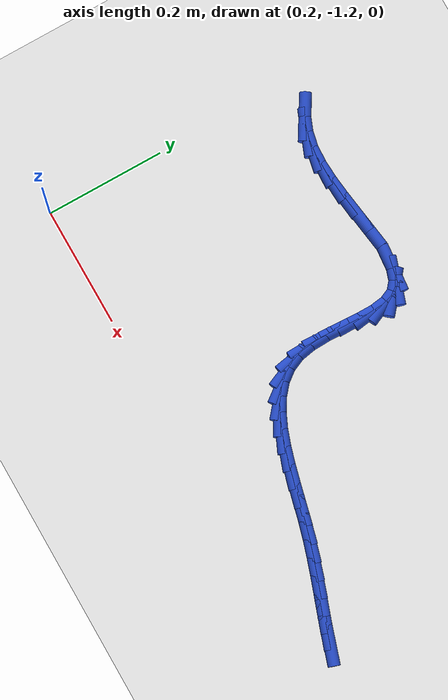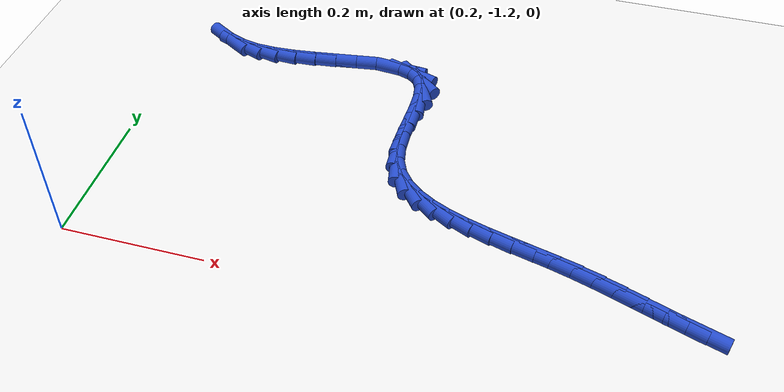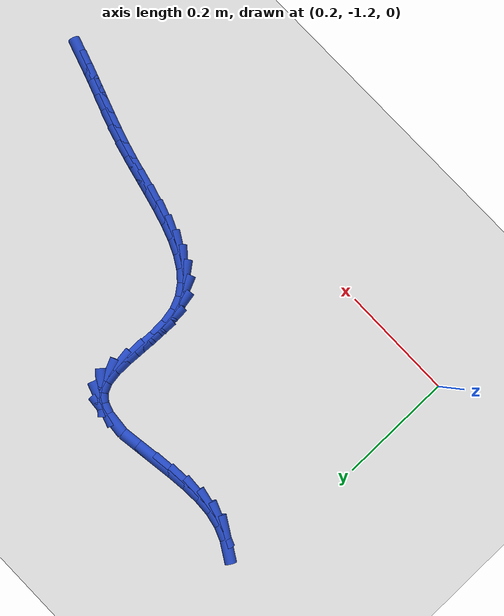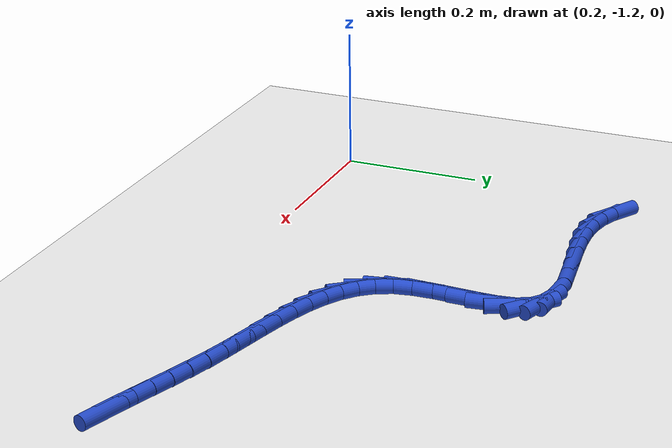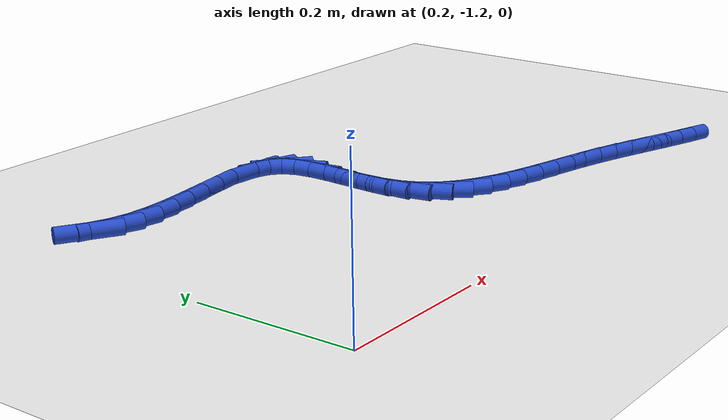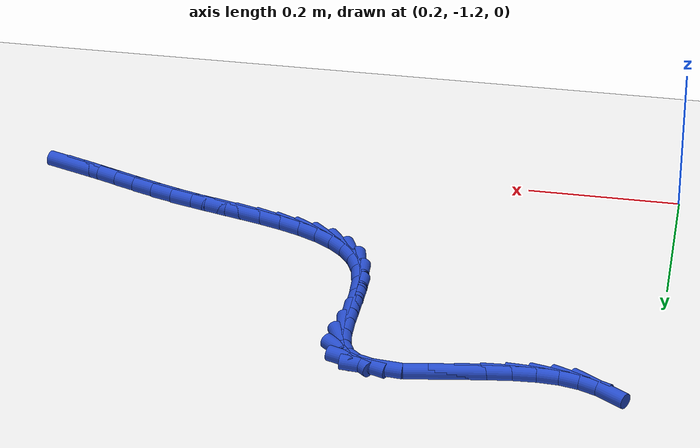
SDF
<sdf version="1.6">
 <world name="default">
  <model name="ground_plane">
   <static>1</static>
   <link name="link">
    <collision name="collision">
     <geometry><plane><normal>0 0 1</normal><size>100 100</size></plane></geometry>
     <surface><friction><ode><mu>100</mu><mu2>50</mu2></ode></friction></surface>
    </collision>
    <visual name="visual">
     <cast_shadows>0</cast_shadows>
     <geometry><plane><normal>0 0 1</normal><size>100 100</size></plane></geometry>
     <material>
      <script><uri>file://media/materials/scripts/gazebo.material</uri><name>Gazebo/WhiteGlow</name></script>
     </material>
    </visual>
   </link>
  </model>
  <model name="line">
   <link name="link_213">
    <pose>1.0063877516272897 -1.1517165507492408 0.01 0 1.57 -0.3169018173173092</pose>
    <collision name="collision">
     <geometry><cylinder><radius>0.01</radius><length>0.08</length></cylinder></geometry>
    </collision>
    <visual name="visual">
     <material>
      <script><name>Gazebo/Blue</name><uri>file://media/materials/scripts/gazebo.material</uri></script>
     </material>
     <geometry><cylinder><radius>0.01</radius><length>0.08</length></cylinder></geometry>
    </visual>
   </link>
   <link name="link_214">
    <pose>0.9821452670586619 -1.1437661188666948 0.01 0 1.57 -0.3348728187438508</pose>
    <collision name="collision">
     <geometry><cylinder><radius>0.01</radius><length>0.08</length></cylinder></geometry>
    </collision>
    <visual name="visual">
     <material>
      <script><name>Gazebo/Blue</name><uri>file://media/materials/scripts/gazebo.material</uri></script>
     </material>
     <geometry><cylinder><radius>0.01</radius><length>0.08</length></cylinder></geometry>
    </visual>
   </link>
   <link name="link_215">
    <pose>0.9575686170639468 -1.135213972402109 0.01 0 1.57 -0.3419010618178544</pose>
    <collision name="collision">
     <geometry><cylinder><radius>0.01</radius><length>0.08</length></cylinder></geometry>
    </collision>
    <visual name="visual">
     <material>
      <script><name>Gazebo/Blue</name><uri>file://media/materials/scripts/gazebo.material</uri></script>
     </material>
     <geometry><cylinder><radius>0.01</radius><length>0.08</length></cylinder></geometry>
    </visual>
   </link>
   <link name="link_216">
    <pose>0.9325198515536036 -1.1262996863349455 0.01 0 1.57 -0.3386268094521297</pose>
    <collision name="collision">
     <geometry><cylinder><radius>0.01</radius><length>0.08</length></cylinder></geometry>
    </collision>
    <visual name="visual">
     <material>
      <script><name>Gazebo/Blue</name><uri>file://media/materials/scripts/gazebo.material</uri></script>
     </material>
     <geometry><cylinder><radius>0.01</radius><length>0.08</length></cylinder></geometry>
    </visual>
   </link>
   <link name="link_217">
    <pose>0.906861020438091 -1.1172628356446643 0.01 0 1.57 -0.3257518113281128</pose>
    <collision name="collision">
     <geometry><cylinder><radius>0.01</radius><length>0.08</length></cylinder></geometry>
    </collision>
    <visual name="visual">
     <material>
      <script><name>Gazebo/Blue</name><uri>file://media/materials/scripts/gazebo.material</uri></script>
     </material>
     <geometry><cylinder><radius>0.01</radius><length>0.08</length></cylinder></geometry>
    </visual>
   </link>
   <link name="link_218">
    <pose>0.8804541736278702 -1.1083429953107273 0.01 0 1.57 -0.3040277574265963</pose>
    <collision name="collision">
     <geometry><cylinder><radius>0.01</radius><length>0.08</length></cylinder></geometry>
    </collision>
    <visual name="visual">
     <material>
      <script><name>Gazebo/Blue</name><uri>file://media/materials/scripts/gazebo.material</uri></script>
     </material>
     <geometry><cylinder><radius>0.01</radius><length>0.08</length></cylinder></geometry>
    </visual>
   </link>
   <link name="link_219">
    <pose>0.8531613610333997 -1.0997797403125953 0.01 0 1.57 -0.27442240975214294</pose>
    <collision name="collision">
     <geometry><cylinder><radius>0.01</radius><length>0.08</length></cylinder></geometry>
    </collision>
    <visual name="visual">
     <material>
      <script><name>Gazebo/Blue</name><uri>file://media/materials/scripts/gazebo.material</uri></script>
     </material>
     <geometry><cylinder><radius>0.01</radius><length>0.08</length></cylinder></geometry>
    </visual>
   </link>
   <link name="link_220">
    <pose>0.8248486206551169 -1.0918089919440928 0.01 0 1.57 -0.2479478259086501</pose>
    <collision name="collision">
     <geometry><cylinder><radius>0.01</radius><length>0.08</length></cylinder></geometry>
    </collision>
    <visual name="visual">
     <material>
      <script><name>Gazebo/Blue</name><uri>file://media/materials/scripts/gazebo.material</uri></script>
     </material>
     <geometry><cylinder><radius>0.01</radius><length>0.08</length></cylinder></geometry>
    </visual>
   </link>
   <link name="link_221">
    <pose>0.7956534042676906 -1.084418015973779 0.01 0 1.57 -0.24026138202945135</pose>
    <collision name="collision">
     <geometry><cylinder><radius>0.01</radius><length>0.08</length></cylinder></geometry>
    </collision>
    <visual name="visual">
     <material>
      <script><name>Gazebo/Blue</name><uri>file://media/materials/scripts/gazebo.material</uri></script>
     </material>
     <geometry><cylinder><radius>0.01</radius><length>0.08</length></cylinder></geometry>
    </visual>
   </link>
   <link name="link_222">
    <pose>0.7661534489423661 -1.0771907111266732 0.01 0 1.57 -0.25205851734310414</pose>
    <collision name="collision">
     <geometry><cylinder><radius>0.01</radius><length>0.08</length></cylinder></geometry>
    </collision>
    <visual name="visual">
     <material>
      <script><name>Gazebo/Blue</name><uri>file://media/materials/scripts/gazebo.material</uri></script>
     </material>
     <geometry><cylinder><radius>0.01</radius><length>0.08</length></cylinder></geometry>
    </visual>
   </link>
   <link name="link_223">
    <pose>0.7369667521843289 -1.069674091561499 0.01 0 1.57 -0.28437295584707917</pose>
    <collision name="collision">
     <geometry><cylinder><radius>0.01</radius><length>0.08</length></cylinder></geometry>
    </collision>
    <visual name="visual">
     <material>
      <script><name>Gazebo/Blue</name><uri>file://media/materials/scripts/gazebo.material</uri></script>
     </material>
     <geometry><cylinder><radius>0.01</radius><length>0.08</length></cylinder></geometry>
    </visual>
   </link>
   <link name="link_224">
    <pose>0.7087113114987644 -1.0614151714369815 0.01 0 1.57 -0.34024103678348433</pose>
    <collision name="collision">
     <geometry><cylinder><radius>0.01</radius><length>0.08</length></cylinder></geometry>
    </collision>
    <visual name="visual">
     <material>
      <script><name>Gazebo/Blue</name><uri>file://media/materials/scripts/gazebo.material</uri></script>
     </material>
     <geometry><cylinder><radius>0.01</radius><length>0.08</length></cylinder></geometry>
    </visual>
   </link>
   <link name="link_225">
    <pose>0.6820051243908577 -1.0519609649118453 0.01 0 1.57 -0.42488397078848583</pose>
    <collision name="collision">
     <geometry><cylinder><radius>0.01</radius><length>0.08</length></cylinder></geometry>
    </collision>
    <visual name="visual">
     <material>
      <script><name>Gazebo/Blue</name><uri>file://media/materials/scripts/gazebo.material</uri></script>
     </material>
     <geometry><cylinder><radius>0.01</radius><length>0.08</length></cylinder></geometry>
    </visual>
   </link>
   <link name="link_226">
    <pose>0.657466188365794 -1.040858486144815 0.01 0 1.57 -0.5455254252919339</pose>
    <collision name="collision">
     <geometry><cylinder><radius>0.01</radius><length>0.08</length></cylinder></geometry>
    </collision>
    <visual name="visual">
     <material>
      <script><name>Gazebo/Blue</name><uri>file://media/materials/scripts/gazebo.material</uri></script>
     </material>
     <geometry><cylinder><radius>0.01</radius><length>0.08</length></cylinder></geometry>
    </visual>
   </link>
   <link name="link_227">
    <pose>0.6357125009287595 -1.0276547492946146 0.01 0 1.57 -0.709537556503002</pose>
    <collision name="collision">
     <geometry><cylinder><radius>0.01</radius><length>0.08</length></cylinder></geometry>
    </collision>
    <visual name="visual">
     <material>
      <script><name>Gazebo/Blue</name><uri>file://media/materials/scripts/gazebo.material</uri></script>
     </material>
     <geometry><cylinder><radius>0.01</radius><length>0.08</length></cylinder></geometry>
    </visual>
   </link>
   <link name="link_228">
    <pose>0.6173620595849396 -1.01189676851997 0.01 0 1.57 -0.9186450915708101</pose>
    <collision name="collision">
     <geometry><cylinder><radius>0.01</radius><length>0.08</length></cylinder></geometry>
    </collision>
    <visual name="visual">
     <material>
      <script><name>Gazebo/Blue</name><uri>file://media/materials/scripts/gazebo.material</uri></script>
     </material>
     <geometry><cylinder><radius>0.01</radius><length>0.08</length></cylinder></geometry>
    </visual>
   </link>
   <link name="link_229">
    <pose>0.6030328618395193 -0.9931315579796048 0.01 0 1.57 -1.1596580392340086</pose>
    <collision name="collision">
     <geometry><cylinder><radius>0.01</radius><length>0.08</length></cylinder></geometry>
    </collision>
    <visual name="visual">
     <material>
      <script><name>Gazebo/Blue</name><uri>file://media/materials/scripts/gazebo.material</uri></script>
     </material>
     <geometry><cylinder><radius>0.01</radius><length>0.08</length></cylinder></geometry>
    </visual>
   </link>
   <link name="link_230">
    <pose>0.5933429051976841 -0.970906131832244 0.01 0 1.57 -1.3905085445748149</pose>
    <collision name="collision">
     <geometry><cylinder><radius>0.01</radius><length>0.08</length></cylinder></geometry>
    </collision>
    <visual name="visual">
     <material>
      <script><name>Gazebo/Blue</name><uri>file://media/materials/scripts/gazebo.material</uri></script>
     </material>
     <geometry><cylinder><radius>0.01</radius><length>0.08</length></cylinder></geometry>
    </visual>
   </link>
   <link name="link_231">
    <pose>0.5886236752839588 -0.9450142609044843 0.01 0 1.57 -1.537141504312082</pose>
    <collision name="collision">
     <geometry><cylinder><radius>0.01</radius><length>0.08</length></cylinder></geometry>
    </collision>
    <visual name="visual">
     <material>
      <script><name>Gazebo/Blue</name><uri>file://media/materials/scripts/gazebo.material</uri></script>
     </material>
     <geometry><cylinder><radius>0.01</radius><length>0.08</length></cylinder></geometry>
    </visual>
   </link>
   <link name="link_232">
    <pose>0.5876662422731432 -0.9165763897463167 0.01 0 1.57 1.534102862228794</pose>
    <collision name="collision">
     <geometry><cylinder><radius>0.01</radius><length>0.08</length></cylinder></geometry>
    </collision>
    <visual name="visual">
     <material>
      <script><name>Gazebo/Blue</name><uri>file://media/materials/scripts/gazebo.material</uri></script>
     </material>
     <geometry><cylinder><radius>0.01</radius><length>0.08</length></cylinder></geometry>
    </visual>
   </link>
   <link name="link_233">
    <pose>0.5887462304780124 -0.8871568876172027 0.01 0 1.57 1.5225384886530142</pose>
    <collision name="collision">
     <geometry><cylinder><radius>0.01</radius><length>0.08</length></cylinder></geometry>
    </collision>
    <visual name="visual">
     <material>
      <script><name>Gazebo/Blue</name><uri>file://media/materials/scripts/gazebo.material</uri></script>
     </material>
     <geometry><cylinder><radius>0.01</radius><length>0.08</length></cylinder></geometry>
    </visual>
   </link>
   <link name="link_234">
    <pose>0.5901388963267821 -0.8583204406150093 0.01 0 1.57 -1.5700694247165523</pose>
    <collision name="collision">
     <geometry><cylinder><radius>0.01</radius><length>0.08</length></cylinder></geometry>
    </collision>
    <visual name="visual">
     <material>
      <script><name>Gazebo/Blue</name><uri>file://media/materials/scripts/gazebo.material</uri></script>
     </material>
     <geometry><cylinder><radius>0.01</radius><length>0.08</length></cylinder></geometry>
    </visual>
   </link>
   <link name="link_235">
    <pose>0.5901194962476672 -0.8316317348376073 0.01 0 1.57 -1.4342825395896441</pose>
    <collision name="collision">
     <geometry><cylinder><radius>0.01</radius><length>0.08</length></cylinder></geometry>
    </collision>
    <visual name="visual">
     <material>
      <script><name>Gazebo/Blue</name><uri>file://media/materials/scripts/gazebo.material</uri></script>
     </material>
     <geometry><cylinder><radius>0.01</radius><length>0.08</length></cylinder></geometry>
    </visual>
   </link>
   <link name="link_236">
    <pose>0.586963286668883 -0.8086554563828643 0.01 0 1.57 -1.1457490381836601</pose>
    <collision name="collision">
     <geometry><cylinder><radius>0.01</radius><length>0.08</length></cylinder></geometry>
    </collision>
    <visual name="visual">
     <material>
      <script><name>Gazebo/Blue</name><uri>file://media/materials/scripts/gazebo.material</uri></script>
     </material>
     <geometry><cylinder><radius>0.01</radius><length>0.08</length></cylinder></geometry>
    </visual>
   </link>
   <link name="link_237">
    <pose>0.5789499398076057 -0.7909518849195389 0.01 0 1.57 -0.6994110973312728</pose>
    <collision name="collision">
     <geometry><cylinder><radius>0.01</radius><length>0.08</length></cylinder></geometry>
    </collision>
    <visual name="visual">
     <material>
      <script><name>Gazebo/Blue</name><uri>file://media/materials/scripts/gazebo.material</uri></script>
     </material>
     <geometry><cylinder><radius>0.01</radius><length>0.08</length></cylinder></geometry>
    </visual>
   </link>
   <link name="link_238">
    <pose>0.5651227391582054 -0.7793193074146259 0.01 0 1.57 -0.32467926261609437</pose>
    <collision name="collision">
     <geometry><cylinder><radius>0.01</radius><length>0.08</length></cylinder></geometry>
    </collision>
    <visual name="visual">
     <material>
      <script><name>Gazebo/Blue</name><uri>file://media/materials/scripts/gazebo.material</uri></script>
     </material>
     <geometry><cylinder><radius>0.01</radius><length>0.08</length></cylinder></geometry>
    </visual>
   </link>
   <link name="link_239">
    <pose>0.5461508711877963 -0.7729335541794785 0.01 0 1.57 -0.09315373244720457</pose>
    <collision name="collision">
     <geometry><cylinder><radius>0.01</radius><length>0.08</length></cylinder></geometry>
    </collision>
    <visual name="visual">
     <material>
      <script><name>Gazebo/Blue</name><uri>file://media/materials/scripts/gazebo.material</uri></script>
     </material>
     <geometry><cylinder><radius>0.01</radius><length>0.08</length></cylinder></geometry>
    </visual>
   </link>
   <link name="link_242">
    <pose>0.4671433247045026 -0.7749357642547532 0.01 0 1.57 0.13819204345663497</pose>
    <collision name="collision">
     <geometry><cylinder><radius>0.01</radius><length>0.08</length></cylinder></geometry>
    </collision>
    <visual name="visual">
     <material>
      <script><name>Gazebo/Blue</name><uri>file://media/materials/scripts/gazebo.material</uri></script>
     </material>
     <geometry><cylinder><radius>0.01</radius><length>0.08</length></cylinder></geometry>
    </visual>
   </link>
   <link name="link_243">
    <pose>0.4363688488040445 -0.779215832260791 0.01 0 1.57 0.13759632098117272</pose>
    <collision name="collision">
     <geometry><cylinder><radius>0.01</radius><length>0.08</length></cylinder></geometry>
    </collision>
    <visual name="visual">
     <material>
      <script><name>Gazebo/Blue</name><uri>file://media/materials/scripts/gazebo.material</uri></script>
     </material>
     <geometry><cylinder><radius>0.01</radius><length>0.08</length></cylinder></geometry>
    </visual>
   </link>
   <link name="link_244">
    <pose>0.4048377362595721 -0.7835819866176549 0.01 0 1.57 0.10845771438803689</pose>
    <collision name="collision">
     <geometry><cylinder><radius>0.01</radius><length>0.08</length></cylinder></geometry>
    </collision>
    <visual name="visual">
     <material>
      <script><name>Gazebo/Blue</name><uri>file://media/materials/scripts/gazebo.material</uri></script>
     </material>
     <geometry><cylinder><radius>0.01</radius><length>0.08</length></cylinder></geometry>
    </visual>
   </link>
   <link name="link_245">
    <pose>0.37342759320648333 -0.7870020797415571 0.01 0 1.57 0.04737688532872206</pose>
    <collision name="collision">
     <geometry><cylinder><radius>0.01</radius><length>0.08</length></cylinder></geometry>
    </collision>
    <visual name="visual">
     <material>
      <script><name>Gazebo/Blue</name><uri>file://media/materials/scripts/gazebo.material</uri></script>
     </material>
     <geometry><cylinder><radius>0.01</radius><length>0.08</length></cylinder></geometry>
    </visual>
   </link>
   <link name="link_246">
    <pose>0.343016025780177 -0.7884439640487101 0.01 0 1.57 -0.05491060779732813</pose>
    <collision name="collision">
     <geometry><cylinder><radius>0.01</radius><length>0.08</length></cylinder></geometry>
    </collision>
    <visual name="visual">
     <material>
      <script><name>Gazebo/Blue</name><uri>file://media/materials/scripts/gazebo.material</uri></script>
     </material>
     <geometry><cylinder><radius>0.01</radius><length>0.08</length></cylinder></geometry>
    </visual>
   </link>
   <link name="link_247">
    <pose>0.3144806401160521 -0.7868754919553259 0.01 0 1.57 -0.20642223135708587</pose>
    <collision name="collision">
     <geometry><cylinder><radius>0.01</radius><length>0.08</length></cylinder></geometry>
    </collision>
    <visual name="visual">
     <material>
      <script><name>Gazebo/Blue</name><uri>file://media/materials/scripts/gazebo.material</uri></script>
     </material>
     <geometry><cylinder><radius>0.01</radius><length>0.08</length></cylinder></geometry>
    </visual>
   </link>
   <link name="link_248">
    <pose>0.2885544078601241 -0.7814464099915787 0.01 0 1.57 -0.37736456974667343</pose>
    <collision name="collision">
     <geometry><cylinder><radius>0.01</radius><length>0.08</length></cylinder></geometry>
    </collision>
    <visual name="visual">
     <material>
      <script><name>Gazebo/Blue</name><uri>file://media/materials/scripts/gazebo.material</uri></script>
     </material>
     <geometry><cylinder><radius>0.01</radius><length>0.08</length></cylinder></geometry>
    </visual>
   </link>
   <link name="link_249">
    <pose>0.2652517233079605 -0.772210156407582 0.01 0 1.57 -0.5466404808798317</pose>
    <collision name="collision">
     <geometry><cylinder><radius>0.01</radius><length>0.08</length></cylinder></geometry>
    </collision>
    <visual name="visual">
     <material>
      <script><name>Gazebo/Blue</name><uri>file://media/materials/scripts/gazebo.material</uri></script>
     </material>
     <geometry><cylinder><radius>0.01</radius><length>0.08</length></cylinder></geometry>
    </visual>
   </link>
  </model>
 </world>
</sdf>
